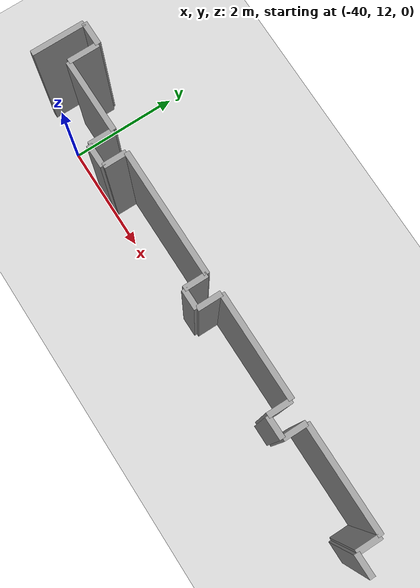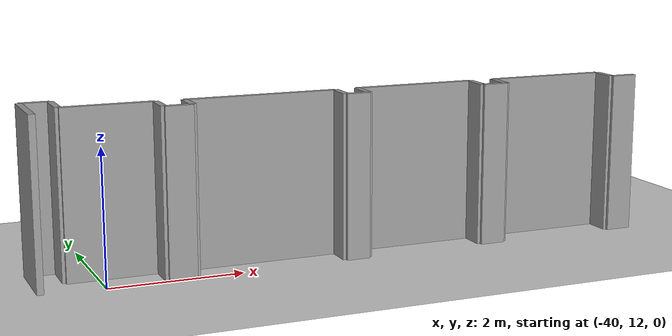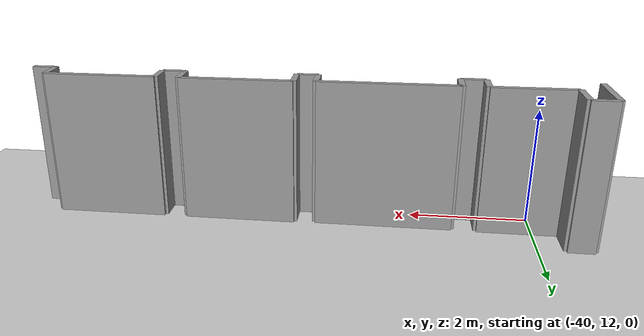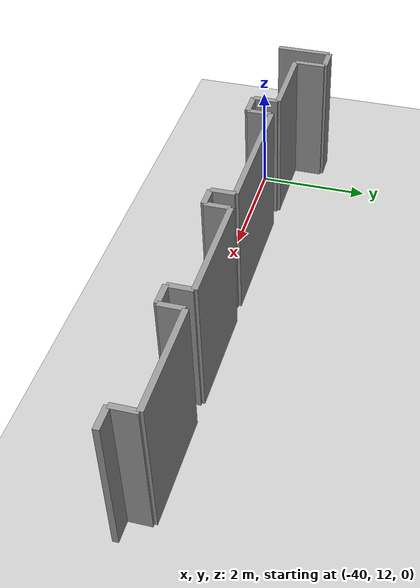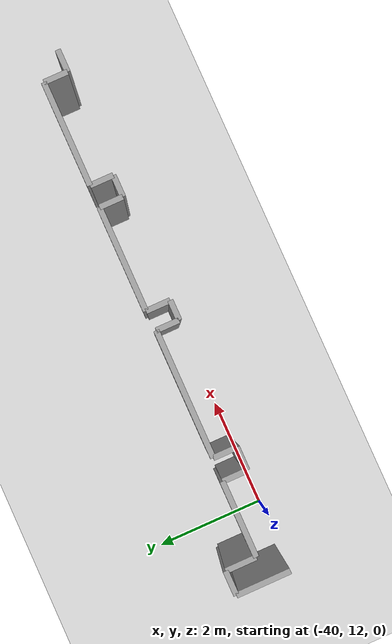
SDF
<sdf version="1.6">
 <world name="default">
  <model name="ground_plane">
   <static>1</static>
   <link name="link">
    <collision name="collision">
     <geometry><plane><normal>0 0 1</normal><size>100 100</size></plane></geometry>
     <surface><friction><ode><mu>100</mu><mu2>50</mu2></ode></friction></surface>
    </collision>
    <visual name="visual">
     <cast_shadows>0</cast_shadows>
     <geometry><plane><normal>0 0 1</normal><size>100 100</size></plane></geometry>
     <material>
      <script><uri>file://media/materials/scripts/gazebo.material</uri><name>Gazebo/Grey</name></script>
     </material>
    </visual>
   </link>
  </model>
  <model name="50010541">
   <static>1</static>
   <link name="Wall_99">
    <collision name="Wall_99_Collision">
     <geometry><box><size>0.978253970269 0.1 2.5</size></box></geometry>
     <pose>0.489126985134 0 1.25 0 0 0</pose>
    </collision>
    <visual name="Wall_99_Visual">
     <pose>0.489126985134 0 1.25 0 0 0</pose>
     <geometry><box><size>0.978253970269 0.1 2.5</size></box></geometry>
     <material>
      <script><uri>file://media/materials/scripts/gazebo.material</uri><name>Gazebo/Grey</name></script>
      <ambient>1 1 1 1</ambient>
     </material>
    </visual>
    <pose>12.050829599 -1.00085054524 0 0 0 1.57079632679</pose>
   </link>
   <link name="Wall_100">
    <collision name="Wall_100_Collision">
     <geometry><box><size>0.435555329872 0.1 2.5</size></box></geometry>
     <pose>0.217777664936 0 1.25 0 0 0</pose>
    </collision>
    <visual name="Wall_100_Visual">
     <pose>0.217777664936 0 1.25 0 0 0</pose>
     <geometry><box><size>0.435555329872 0.1 2.5</size></box></geometry>
     <material>
      <script><uri>file://media/materials/scripts/gazebo.material</uri><name>Gazebo/Grey</name></script>
      <ambient>1 1 1 1</ambient>
     </material>
    </visual>
    <pose>12.050829599 -0.0225965749686 0 0 0 0.0</pose>
   </link>
   <link name="Wall_101">
    <collision name="Wall_101_Collision">
     <geometry><box><size>0.555393345436 0.1 2.5</size></box></geometry>
     <pose>0.277696672718 0 1.25 0 0 0</pose>
    </collision>
    <visual name="Wall_101_Visual">
     <pose>0.277696672718 0 1.25 0 0 0</pose>
     <geometry><box><size>0.555393345436 0.1 2.5</size></box></geometry>
     <material>
      <script><uri>file://media/materials/scripts/gazebo.material</uri><name>Gazebo/Grey</name></script>
      <ambient>1 1 1 1</ambient>
     </material>
    </visual>
    <pose>12.4863849288 -0.0225965749686 0 0 0 -1.57079632679</pose>
   </link>
   <link name="Wall_102">
    <collision name="Wall_102_Collision">
     <geometry><box><size>1.36328437409 0.1 2.5</size></box></geometry>
     <pose>0.681642187044 0 1.25 0 0 0</pose>
    </collision>
    <visual name="Wall_102_Visual">
     <pose>0.681642187044 0 1.25 0 0 0</pose>
     <geometry><box><size>1.36328437409 0.1 2.5</size></box></geometry>
     <material>
      <script><uri>file://media/materials/scripts/gazebo.material</uri><name>Gazebo/Grey</name></script>
      <ambient>1 1 1 1</ambient>
     </material>
    </visual>
    <pose>12.4863849288 -0.577989920404 0 0 0 0.0</pose>
   </link>
   <link name="Wall_103">
    <collision name="Wall_103_Collision">
     <geometry><box><size>0.44812308786 0.1 2.5</size></box></geometry>
     <pose>0.22406154393 0 1.25 0 0 0</pose>
    </collision>
    <visual name="Wall_103_Visual">
     <pose>0.22406154393 0 1.25 0 0 0</pose>
     <geometry><box><size>0.44812308786 0.1 2.5</size></box></geometry>
     <material>
      <script><uri>file://media/materials/scripts/gazebo.material</uri><name>Gazebo/Grey</name></script>
      <ambient>1 1 1 1</ambient>
     </material>
    </visual>
    <pose>13.8496693029 -0.577989920404 0 0 0 -1.57079632679</pose>
   </link>
   <link name="Wall_104">
    <collision name="Wall_104_Collision">
     <geometry><box><size>0.416513272314 0.1 2.5</size></box></geometry>
     <pose>0.208256636157 0 1.25 0 0 0</pose>
    </collision>
    <visual name="Wall_104_Visual">
     <pose>0.208256636157 0 1.25 0 0 0</pose>
     <geometry><box><size>0.416513272314 0.1 2.5</size></box></geometry>
     <material>
      <script><uri>file://media/materials/scripts/gazebo.material</uri><name>Gazebo/Grey</name></script>
      <ambient>1 1 1 1</ambient>
     </material>
    </visual>
    <pose>13.8496693029 -1.02611300826 0 0 0 0.0</pose>
   </link>
   <link name="Wall_105">
    <collision name="Wall_105_Collision">
     <geometry><box><size>0.429081030302 0.1 2.5</size></box></geometry>
     <pose>0.214540515151 0 1.25 0 0 0</pose>
    </collision>
    <visual name="Wall_105_Visual">
     <pose>0.214540515151 0 1.25 0 0 0</pose>
     <geometry><box><size>0.429081030302 0.1 2.5</size></box></geometry>
     <material>
      <script><uri>file://media/materials/scripts/gazebo.material</uri><name>Gazebo/Grey</name></script>
      <ambient>1 1 1 1</ambient>
     </material>
    </visual>
    <pose>14.2661825752 -1.02611300826 0 0 0 1.57079632679</pose>
   </link>
   <link name="Wall_106">
    <collision name="Wall_106_Collision">
     <geometry><box><size>2.31157884047 0.1 2.5</size></box></geometry>
     <pose>1.15578942023 0 1.25 0 0 0</pose>
    </collision>
    <visual name="Wall_106_Visual">
     <pose>1.15578942023 0 1.25 0 0 0</pose>
     <geometry><box><size>2.31157884047 0.1 2.5</size></box></geometry>
     <material>
      <script><uri>file://media/materials/scripts/gazebo.material</uri><name>Gazebo/Grey</name></script>
      <ambient>1 1 1 1</ambient>
     </material>
    </visual>
    <pose>14.2661825752 -0.597031977962 0 0 0 0.0</pose>
   </link>
   <link name="Wall_107">
    <collision name="Wall_107_Collision">
     <geometry><box><size>0.415878537062 0.1 2.5</size></box></geometry>
     <pose>0.207939268531 0 1.25 0 0 0</pose>
    </collision>
    <visual name="Wall_107_Visual">
     <pose>0.207939268531 0 1.25 0 0 0</pose>
     <geometry><box><size>0.415878537062 0.1 2.5</size></box></geometry>
     <material>
      <script><uri>file://media/materials/scripts/gazebo.material</uri><name>Gazebo/Grey</name></script>
      <ambient>1 1 1 1</ambient>
     </material>
    </visual>
    <pose>16.5777614157 -0.597031977962 0 0 0 -1.57079632679</pose>
   </link>
   <link name="Wall_108">
    <collision name="Wall_108_Collision">
     <geometry><box><size>0.362941617052 0.1 2.5</size></box></geometry>
     <pose>0.181470808526 0 1.25 0 0 0</pose>
    </collision>
    <visual name="Wall_108_Visual">
     <pose>0.181470808526 0 1.25 0 0 0</pose>
     <geometry><box><size>0.362941617052 0.1 2.5</size></box></geometry>
     <material>
      <script><uri>file://media/materials/scripts/gazebo.material</uri><name>Gazebo/Grey</name></script>
      <ambient>1 1 1 1</ambient>
     </material>
    </visual>
    <pose>16.5777614157 -1.01291051502 0 0 0 0.0</pose>
   </link>
   <link name="Wall_109">
    <collision name="Wall_109_Collision">
     <geometry><box><size>0.442791311744 0.1 2.5</size></box></geometry>
     <pose>0.221395655872 0 1.25 0 0 0</pose>
    </collision>
    <visual name="Wall_109_Visual">
     <pose>0.221395655872 0 1.25 0 0 0</pose>
     <geometry><box><size>0.442791311744 0.1 2.5</size></box></geometry>
     <material>
      <script><uri>file://media/materials/scripts/gazebo.material</uri><name>Gazebo/Grey</name></script>
      <ambient>1 1 1 1</ambient>
     </material>
    </visual>
    <pose>16.9407030328 -1.01291051502 0 0 0 1.57079632679</pose>
   </link>
   <link name="Wall_110">
    <collision name="Wall_110_Collision">
     <geometry><box><size>1.90166681477 0.1 2.5</size></box></geometry>
     <pose>0.950833407386 0 1.25 0 0 0</pose>
    </collision>
    <visual name="Wall_110_Visual">
     <pose>0.950833407386 0 1.25 0 0 0</pose>
     <geometry><box><size>1.90166681477 0.1 2.5</size></box></geometry>
     <material>
      <script><uri>file://media/materials/scripts/gazebo.material</uri><name>Gazebo/Grey</name></script>
      <ambient>1 1 1 1</ambient>
     </material>
    </visual>
    <pose>16.9407030328 -0.57011920328 0 0 0 0.0</pose>
   </link>
   <link name="Wall_111">
    <collision name="Wall_111_Collision">
     <geometry><box><size>0.428319348 0.1 2.5</size></box></geometry>
     <pose>0.214159674 0 1.25 0 0 0</pose>
    </collision>
    <visual name="Wall_111_Visual">
     <pose>0.214159674 0 1.25 0 0 0</pose>
     <geometry><box><size>0.428319348 0.1 2.5</size></box></geometry>
     <material>
      <script><uri>file://media/materials/scripts/gazebo.material</uri><name>Gazebo/Grey</name></script>
      <ambient>1 1 1 1</ambient>
     </material>
    </visual>
    <pose>18.8423698475 -0.57011920328 0 0 0 -1.57079632679</pose>
   </link>
   <link name="Wall_112">
    <collision name="Wall_112_Collision">
     <geometry><box><size>0.397344267706 0.1 2.5</size></box></geometry>
     <pose>0.198672133853 0 1.25 0 0 0</pose>
    </collision>
    <visual name="Wall_112_Visual">
     <pose>0.198672133853 0 1.25 0 0 0</pose>
     <geometry><box><size>0.397344267706 0.1 2.5</size></box></geometry>
     <material>
      <script><uri>file://media/materials/scripts/gazebo.material</uri><name>Gazebo/Grey</name></script>
      <ambient>1 1 1 1</ambient>
     </material>
    </visual>
    <pose>18.8423698475 -0.99843855128 0 0 0 0.0</pose>
   </link>
   <link name="Wall_113">
    <collision name="Wall_113_Collision">
     <geometry><box><size>0.426669036345 0.1 2.5</size></box></geometry>
     <pose>0.213334518172 0 1.25 0 0 0</pose>
    </collision>
    <visual name="Wall_113_Visual">
     <pose>0.213334518172 0 1.25 0 0 0</pose>
     <geometry><box><size>0.426669036345 0.1 2.5</size></box></geometry>
     <material>
      <script><uri>file://media/materials/scripts/gazebo.material</uri><name>Gazebo/Grey</name></script>
      <ambient>1 1 1 1</ambient>
     </material>
    </visual>
    <pose>19.2397141152 -0.99843855128 0 0 0 1.57079632679</pose>
   </link>
   <link name="Wall_114">
    <collision name="Wall_114_Collision">
     <geometry><box><size>1.90598301448 0.1 2.5</size></box></geometry>
     <pose>0.952991507242 0 1.25 0 0 0</pose>
    </collision>
    <visual name="Wall_114_Visual">
     <pose>0.952991507242 0 1.25 0 0 0</pose>
     <geometry><box><size>1.90598301448 0.1 2.5</size></box></geometry>
     <material>
      <script><uri>file://media/materials/scripts/gazebo.material</uri><name>Gazebo/Grey</name></script>
      <ambient>1 1 1 1</ambient>
     </material>
    </visual>
    <pose>19.2397141152 -0.571769514935 0 0 0 0.0</pose>
   </link>
   <link name="Wall_115">
    <collision name="Wall_115_Collision">
     <geometry><box><size>0.435428382822 0.1 2.5</size></box></geometry>
     <pose>0.217714191411 0 1.25 0 0 0</pose>
    </collision>
    <visual name="Wall_115_Visual">
     <pose>0.217714191411 0 1.25 0 0 0</pose>
     <geometry><box><size>0.435428382822 0.1 2.5</size></box></geometry>
     <material>
      <script><uri>file://media/materials/scripts/gazebo.material</uri><name>Gazebo/Grey</name></script>
      <ambient>1 1 1 1</ambient>
     </material>
    </visual>
    <pose>21.1456971297 -0.571769514935 0 0 0 -1.57079632679</pose>
   </link>
   <link name="Wall_116">
    <collision name="Wall_116_Collision">
     <geometry><box><size>0.410292866845 0.1 2.5</size></box></geometry>
     <pose>0.205146433423 0 1.25 0 0 0</pose>
    </collision>
    <visual name="Wall_116_Visual">
     <pose>0.205146433423 0 1.25 0 0 0</pose>
     <geometry><box><size>0.410292866845 0.1 2.5</size></box></geometry>
     <material>
      <script><uri>file://media/materials/scripts/gazebo.material</uri><name>Gazebo/Grey</name></script>
      <ambient>1 1 1 1</ambient>
     </material>
    </visual>
    <pose>21.1456971297 -1.00719789776 0 0 0 0.0</pose>
   </link>
   <pose>-52.95 13.0612481434 0 0 0 0</pose>
  </model>
 </world>
</sdf>
